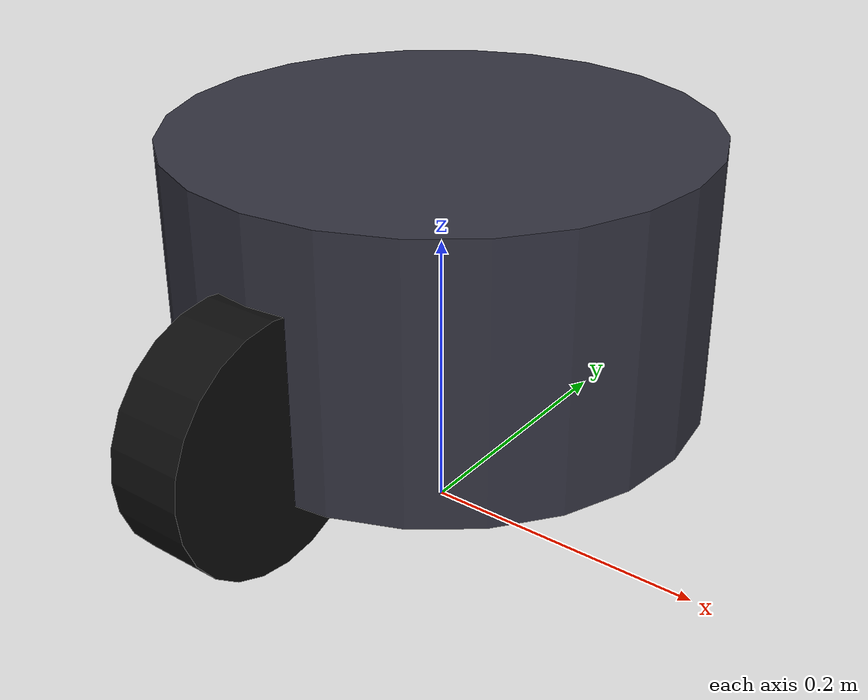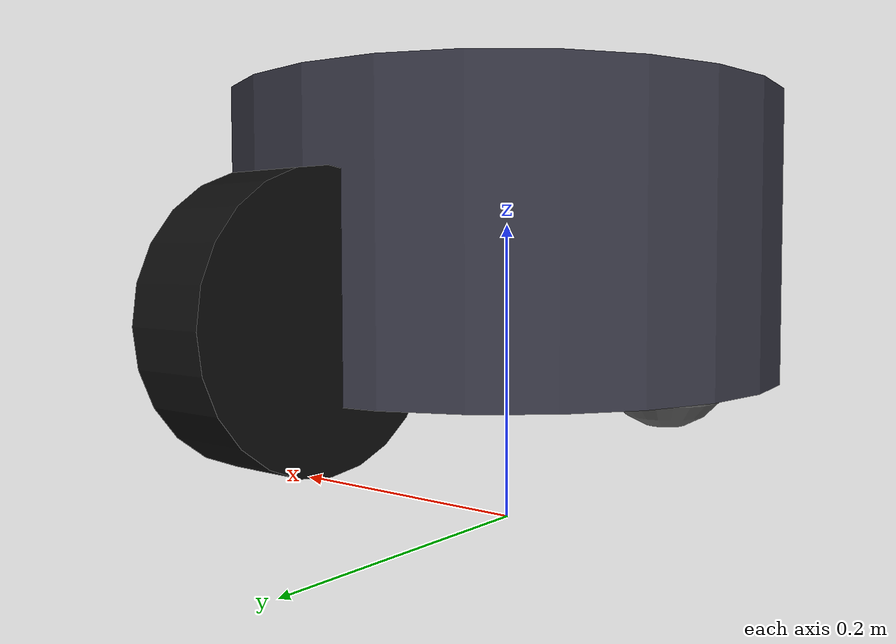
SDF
<?xml version="1.0"?>
<sdf version="1.8">
  <model name="inspection_bot">
    <pose>0 0 0.095 0 0 0</pose>
    <static>false</static>

    <link name="base_link">
      <pose>0 0 0.095 0 0 0</pose>
      <inertial>
        <mass>8.0</mass>
        <inertia>
          <ixx>0.12</ixx>
          <iyy>0.12</iyy>
          <izz>0.2</izz>
          <ixy>0</ixy>
          <ixz>0</ixz>
          <iyz>0</iyz>
        </inertia>
      </inertial>
      <collision name="base_collision">
        <geometry>
          <cylinder>
            <radius>0.18</radius>
            <length>0.18</length>
          </cylinder>
        </geometry>
        <pose>0 0 0 0 0 0</pose>
      </collision>
      <visual name="base_visual">
        <geometry>
          <cylinder>
            <radius>0.18</radius>
            <length>0.18</length>
          </cylinder>
        </geometry>
        <material>
          <ambient>0.1 0.1 0.1 1</ambient>
          <diffuse>0.2 0.2 0.25 1</diffuse>
        </material>
      </visual>

      <sensor name="lidar" type="ray">
        <pose>0 0 0.2 0 0 0</pose>
        <update_rate>12.0</update_rate>
        <ray>
          <scan>
            <horizontal>
              <samples>360</samples>
              <resolution>1</resolution>
              <min_angle>-3.14159</min_angle>
              <max_angle>3.14159</max_angle>
            </horizontal>
          </scan>
          <range>
            <min>0.12</min>
            <max>12.0</max>
            <resolution>0.01</resolution>
          </range>
        </ray>
        <topic>/scan</topic>
        <always_on>true</always_on>
      </sensor>
    </link>

    <link name="caster_link">
      <pose>-0.12 0 0.02 0 0 0</pose>
      <inertial>
        <mass>0.3</mass>
        <inertia>
          <ixx>1e-4</ixx>
          <iyy>1e-4</iyy>
          <izz>1e-4</izz>
          <ixy>0</ixy>
          <ixz>0</ixz>
          <iyz>0</iyz>
        </inertia>
      </inertial>
      <collision name="caster_collision">
        <geometry>
          <sphere>
            <radius>0.04</radius>
          </sphere>
        </geometry>
      </collision>
      <visual name="caster_visual">
        <geometry>
          <sphere>
            <radius>0.04</radius>
          </sphere>
        </geometry>
        <material>
          <ambient>0.3 0.3 0.3 1</ambient>
          <diffuse>0.4 0.4 0.4 1</diffuse>
        </material>
      </visual>
    </link>

    <joint name="caster_joint" type="ball">
      <parent>base_link</parent>
      <child>caster_link</child>
      <pose>0 0 0 0 0 0</pose>
    </joint>

    <link name="wheel_left_link">
      <pose>0 0.185 0.05 0 1.5708 0</pose>
      <inertial>
        <mass>0.5</mass>
        <inertia>
          <ixx>1e-3</ixx>
          <iyy>1e-3</iyy>
          <izz>1e-3</izz>
          <ixy>0</ixy>
          <ixz>0</ixz>
          <iyz>0</iyz>
        </inertia>
      </inertial>
      <collision name="wheel_left_collision">
        <geometry>
          <cylinder>
            <radius>0.08</radius>
            <length>0.05</length>
          </cylinder>
        </geometry>
      </collision>
      <visual name="wheel_left_visual">
        <geometry>
          <cylinder>
            <radius>0.08</radius>
            <length>0.05</length>
          </cylinder>
        </geometry>
        <material>
          <ambient>0.02 0.02 0.02 1</ambient>
          <diffuse>0.05 0.05 0.05 1</diffuse>
        </material>
      </visual>
    </link>

    <link name="wheel_right_link">
      <pose>0 -0.185 0.05 0 1.5708 0</pose>
      <inertial>
        <mass>0.5</mass>
        <inertia>
          <ixx>1e-3</ixx>
          <iyy>1e-3</iyy>
          <izz>1e-3</izz>
          <ixy>0</ixy>
          <ixz>0</ixz>
          <iyz>0</iyz>
        </inertia>
      </inertial>
      <collision name="wheel_right_collision">
        <geometry>
          <cylinder>
            <radius>0.08</radius>
            <length>0.05</length>
          </cylinder>
        </geometry>
      </collision>
      <visual name="wheel_right_visual">
        <geometry>
          <cylinder>
            <radius>0.08</radius>
            <length>0.05</length>
          </cylinder>
        </geometry>
        <material>
          <ambient>0.02 0.02 0.02 1</ambient>
          <diffuse>0.05 0.05 0.05 1</diffuse>
        </material>
      </visual>
    </link>

    <joint name="wheel_left_joint" type="revolute">
      <parent>base_link</parent>
      <child>wheel_left_link</child>
      <pose>0 0 0 0 0 0</pose>
      <axis>
        <xyz>0 1 0</xyz>
        <limit>
          <lower>-1e16</lower>
          <upper>1e16</upper>
        </limit>
        <dynamics>
          <damping>0.1</damping>
        </dynamics>
      </axis>
    </joint>

    <joint name="wheel_right_joint" type="revolute">
      <parent>base_link</parent>
      <child>wheel_right_link</child>
      <pose>0 0 0 0 0 0</pose>
      <axis>
        <xyz>0 1 0</xyz>
        <limit>
          <lower>-1e16</lower>
          <upper>1e16</upper>
        </limit>
        <dynamics>
          <damping>0.1</damping>
        </dynamics>
      </axis>
    </joint>

    <plugin name="gz::sim::systems::DiffDrive" filename="libgz-sim-diff-drive-system.so">
      <left_joint>wheel_left_joint</left_joint>
      <right_joint>wheel_right_joint</right_joint>
      <wheel_separation>0.37</wheel_separation>
      <wheel_radius>0.08</wheel_radius>
      <topic>/cmd_vel</topic>
      <odom_topic>/odom</odom_topic>
      <odom_frame>odom</odom_frame>
      <robot_base_frame>base_link</robot_base_frame>
      <odom_publisher>true</odom_publisher>
      <publish_tf>false</publish_tf>
      <max_linear_speed>0.7</max_linear_speed>
      <max_angular_speed>1.2</max_angular_speed>
    </plugin>

    <!-- PosePublisher removed; rely on ROS odom_to_tf for TF -->

  </model>
</sdf>
